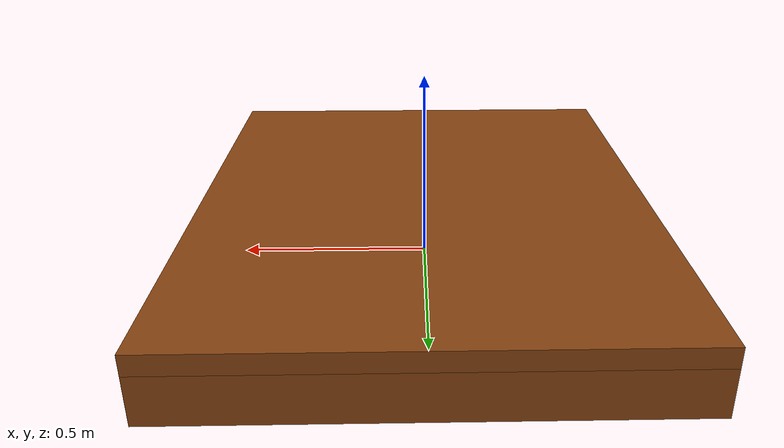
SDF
<?xml version="1.0" ?>
<sdf version="1.6">
  <model name="wood_pallet">
    <static>false</static>

    <link name="pallet_body">
      <inertial>
        <mass>20.0</mass>
        <inertia>
          <ixx>2.0</ixx><iyy>2.5</iyy><izz>4.0</izz>
        </inertia>
      </inertial>

      <collision name="top_deck_col">
        <pose>0 0 0.145 0 0 0</pose>
        <geometry><box><size>1.2 1.5 0.05</size></box></geometry>
      </collision>
      <visual name="top_deck_vis">
        <pose>0 0 0.145 0 0 0</pose>
        <geometry><box><size>1.2 1.5 0.05</size></box></geometry>
        <material>
          <ambient>0.54 0.27 0.07 1</ambient> <diffuse>0.54 0.27 0.07 1</diffuse>
        </material>
      </visual>

      <collision name="left_leg_col">
        <pose>0 0.7 0.06 0 0 0</pose>
        <geometry><box><size>1.2 0.1 0.12</size></box></geometry>
      </collision>
      <visual name="left_leg_vis">
        <pose>0 0.7 0.06 0 0 0</pose>
        <geometry><box><size>1.2 0.1 0.12</size></box></geometry>
        <material><ambient>0.54 0.27 0.07 1</ambient><diffuse>0.54 0.27 0.07 1</diffuse></material>
      </visual>

      <collision name="center_leg_col">
        <pose>0 0.0 0.06 0 0 0</pose>
        <geometry><box><size>1.2 0.1 0.12</size></box></geometry>
      </collision>
      <visual name="center_leg_vis">
        <pose>0 0.0 0.06 0 0 0</pose>
        <geometry><box><size>1.2 0.1 0.12</size></box></geometry>
        <material><ambient>0.54 0.27 0.07 1</ambient><diffuse>0.54 0.27 0.07 1</diffuse></material>
      </visual>

      <collision name="right_leg_col">
        <pose>0 -0.7 0.06 0 0 0</pose>
        <geometry><box><size>1.2 0.1 0.12</size></box></geometry>
      </collision>
      <visual name="right_leg_vis">
        <pose>0 -0.7 0.06 0 0 0</pose>
        <geometry><box><size>1.2 0.1 0.12</size></box></geometry>
        <material><ambient>0.54 0.27 0.07 1</ambient><diffuse>0.54 0.27 0.07 1</diffuse></material>
      </visual>
      <visual name="tag_front">
        <pose>0.601 0 0.06 0 1.5707 0</pose>
        <geometry>
          <plane>
            <normal>0 0 1</normal>
            <size>0.1 0.1</size>
          </plane>
        </geometry>
        <material>
          <diffuse>1 1 1 1</diffuse>
          <specular>0 0 0 1</specular>
          <pbr>
            <metal>
              <albedo_map>model://euro_pallet/materials/textures/ArUco_1.png</albedo_map>
            </metal>
          </pbr>
          <script>
            <uri>model://euro_pallet/materials/scripts</uri>
            <uri>model://euro_pallet/materials/textures</uri>
            <name>EuroPallet/ArUcoTag</name>
          </script>
      </material>
      </visual>

      <visual name="tag_back">
        <pose>-0.601 0 0.06 0 -1.5707 0</pose>
        <geometry>
          <plane>
            <normal>0 0 1</normal>
            <size>0.1 0.1</size>
          </plane>
        </geometry>
        <material>
          <diffuse>1 1 1 1</diffuse>
          <specular>0 0 0 1</specular>
          <pbr>
            <metal>
              <albedo_map>model://euro_pallet/materials/textures/ArUco_1.png</albedo_map>
            </metal>
          </pbr>
          <script>
            <uri>model://euro_pallet/materials/scripts</uri>
            <uri>model://euro_pallet/materials/textures</uri>
            <name>EuroPallet/ArUcoTag</name>
          </script>
      </material>
      </visual>

    </link>
  </model>
</sdf>
